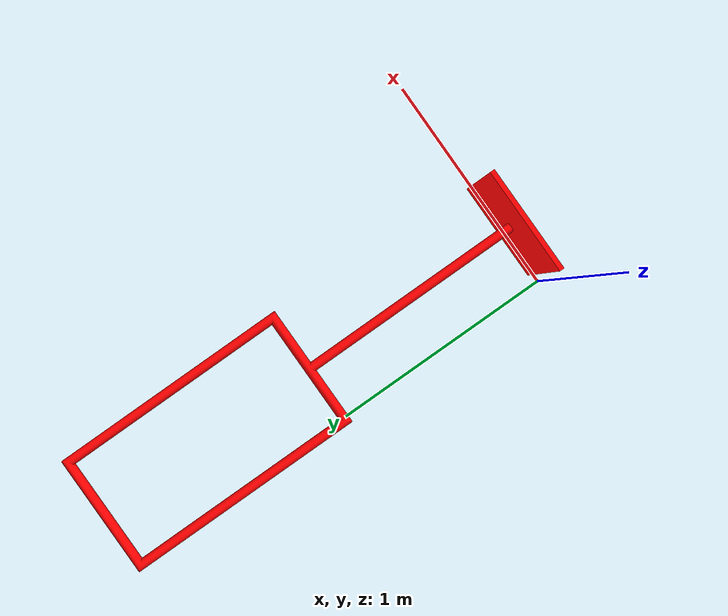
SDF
<?xml version="1.0"?>
<sdf version="1.9">
  <model name="0.5window">
    <static>true</static>
    <link name="link">
      <collision name="collision">
        <geometry>
          <mesh>
            <uri>model://0.5window/meshes/0.5mtunnel.dae</uri>
            <scale>0.001 0.001 0.001</scale>
          </mesh>
        </geometry>
      </collision>

      <visual name="visual">
        <geometry>
          <mesh>
            <uri>model://0.5window/meshes/0.5mtunnel.dae</uri>
            <scale>0.001 0.001 0.001</scale>
          </mesh>
        </geometry>
        <material>
          <ambient>1 0 0 1</ambient>
          <diffuse>1 0 0 1</diffuse>
          <specular>0.1 0.1 0.1 1</specular>
        </material>
      </visual>
    </link>
  </model>
</sdf>
